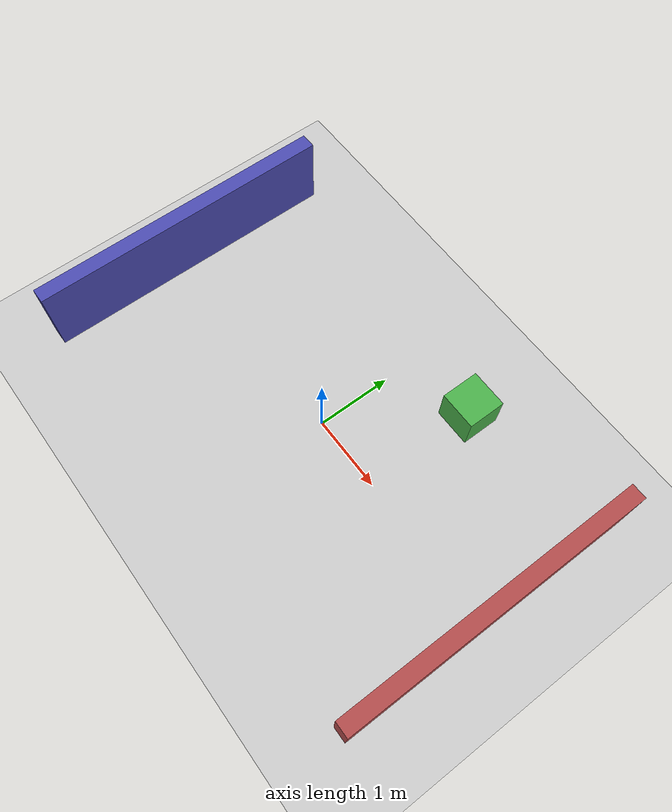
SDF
<?xml version="1.0" ?>
<sdf version="1.8">
  <world name="obstacle_world">

    <physics name="1ms" type="ignored">
      <max_step_size>0.001</max_step_size>
      <real_time_factor>1.0</real_time_factor>
    </physics>

    <plugin filename="gz-sim-physics-system" name="gz::sim::systems::Physics">
    </plugin>
    <plugin filename="gz-sim-user-commands-system" name="gz::sim::systems::UserCommands">
    </plugin>
    <plugin filename="gz-sim-scene-broadcaster-system" name="gz::sim::systems::SceneBroadcaster">
    </plugin>
    <plugin filename="gz-sim-sensors-system" name="gz::sim::systems::Sensors">
      <render_engine>ogre2</render_engine>
    </plugin>

    <light type="directional" name="sun">
      <cast_shadows>true</cast_shadows>
      <pose>0 0 10 0 0 0</pose>
      <diffuse>0.8 0.8 0.8 1</diffuse>
      <specular>0.2 0.2 0.2 1</specular>
      <attenuation>
        <range>1000</range>
        <constant>0.9</constant>
        <linear>0.01</linear>
        <quadratic>0.001</quadratic>
      </attenuation>
      <direction>-0.5 0.1 -0.9</direction>
    </light>

    <model name="ground_plane">
      <static>true</static>
      <link name="link">
        <collision name="collision">
          <geometry>
            <plane>
              <normal>0 0 1</normal>
            </plane>
          </geometry>
        </collision>
        <visual name="visual">
          <geometry>
            <plane>
              <normal>0 0 1</normal>
              <size>100 100</size>
            </plane>
          </geometry>
          <material>
            <ambient>0.8 0.8 0.8 1</ambient>
            <diffuse>0.8 0.8 0.8 1</diffuse>
            <specular>0.8 0.8 0.8 1</specular>
          </material>
        </visual>
      </link>
    </model>

    <!-- Wall 1 -->
    <model name="wall1">
      <static>true</static>
      <pose>3 0 0.5 0 0 0</pose>
      <link name="link">
        <collision name="collision">
          <geometry>
            <box>
              <size>0.2 4 1</size>
            </box>
          </geometry>
        </collision>
        <visual name="visual">
          <geometry>
            <box>
              <size>0.2 4 1</size>
            </box>
          </geometry>
          <material>
            <ambient>0.7 0.3 0.3 1</ambient>
            <diffuse>0.7 0.3 0.3 1</diffuse>
          </material>
        </visual>
      </link>
    </model>

    <!-- Wall 2 -->
    <model name="wall2">
      <static>true</static>
      <pose>-3 0 0.5 0 0 0</pose>
      <link name="link">
        <collision name="collision">
          <geometry>
            <box>
              <size>0.2 4 1</size>
            </box>
          </geometry>
        </collision>
        <visual name="visual">
          <geometry>
            <box>
              <size>0.2 4 1</size>
            </box>
          </geometry>
          <material>
            <ambient>0.3 0.3 0.7 1</ambient>
            <diffuse>0.3 0.3 0.7 1</diffuse>
          </material>
        </visual>
      </link>
    </model>

    <!-- Box obstacle -->
    <model name="box1">
      <static>true</static>
      <pose>1 1.5 0.25 0 0 0</pose>
      <link name="link">
        <collision name="collision">
          <geometry>
            <box>
              <size>0.5 0.5 0.5</size>
            </box>
          </geometry>
        </collision>
        <visual name="visual">
          <geometry>
            <box>
              <size>0.5 0.5 0.5</size>
            </box>
          </geometry>
          <material>
            <ambient>0.3 0.7 0.3 1</ambient>
            <diffuse>0.3 0.7 0.3 1</diffuse>
          </material>
        </visual>
      </link>
    </model>

  </world>
</sdf>
